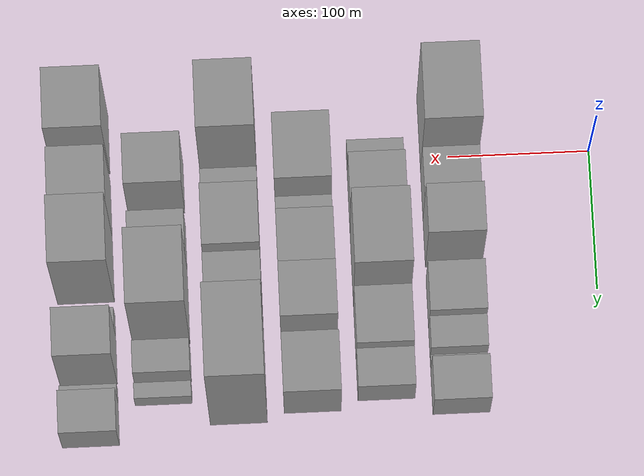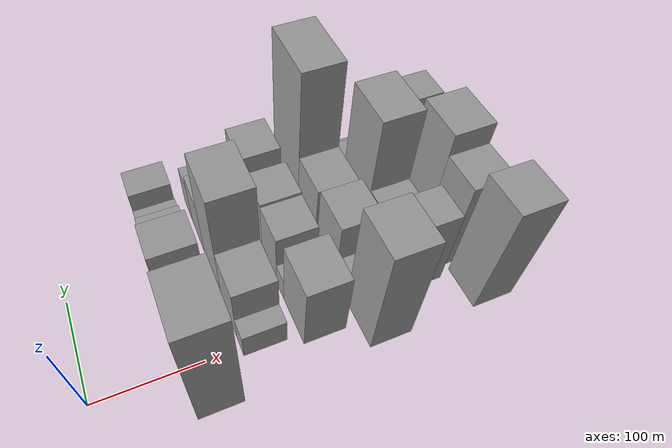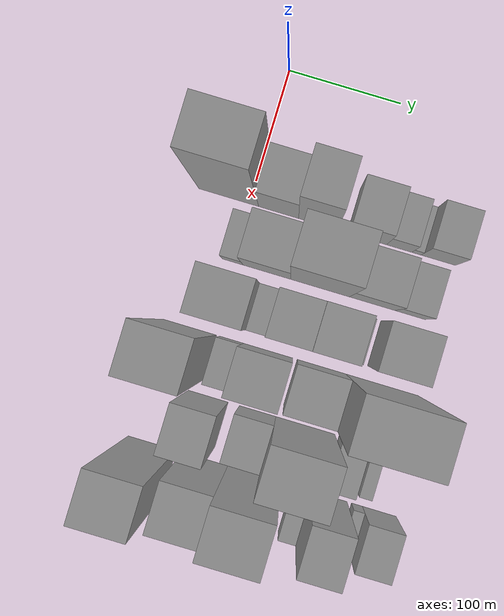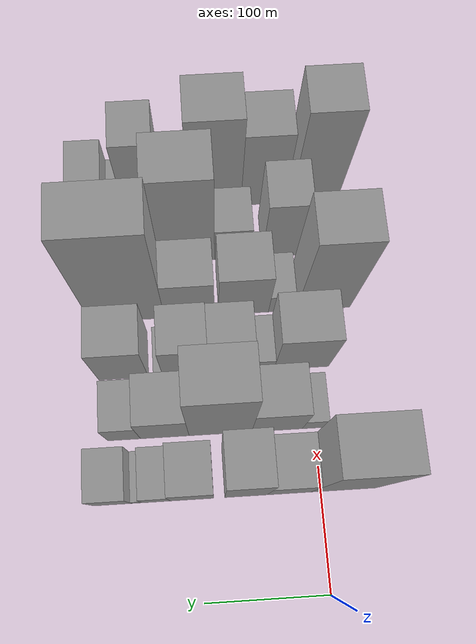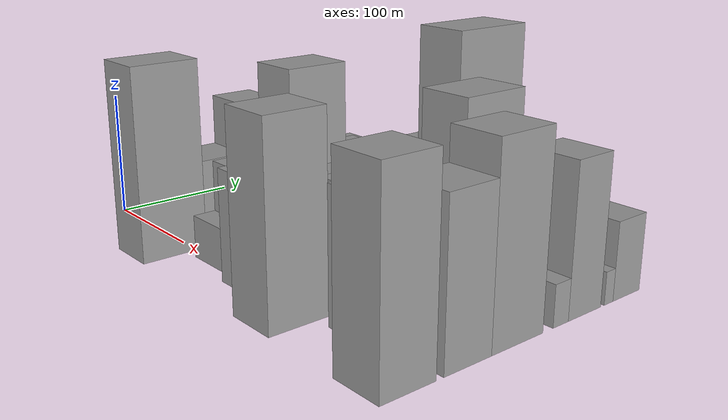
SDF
<sdf version="1.6">
 <world name="default">
  <model name="building_24">
   <static>1</static>
   <pose>100.0000 -18.0642 0 0.000000 0.000000 0.000000</pose>
   <link name="link">
    <pose>0 0 73.50 0 0 0</pose>
    <collision name="collision"><geometry><box><size>40.0000 53.4911 147.0000</size></box></geometry></collision>
    <visual name="visual">
     <cast_shadows>0</cast_shadows>
     <geometry><box><size>40.0000 53.4911 147.0000</size></box></geometry>
     <material>
      <script>
       <uri>model://grey_wall/materials/scripts</uri>
       <uri>model://grey_wall/materials/textures</uri>
       <name>vrc/grey_wall</name>
      </script>
     </material>
    </visual>
   </link>
  </model>
  <model name="building_25">
   <static>1</static>
   <pose>100.0000 26.5422 0 0.000000 0.000000 0.000000</pose>
   <link name="link">
    <pose>0 0 34.50 0 0 0</pose>
    <collision name="collision"><geometry><box><size>40.0000 35.7216 69.0000</size></box></geometry></collision>
    <visual name="visual">
     <cast_shadows>0</cast_shadows>
     <geometry><box><size>40.0000 35.7216 69.0000</size></box></geometry>
     <material>
      <script>
       <uri>model://grey_wall/materials/scripts</uri>
       <uri>model://grey_wall/materials/textures</uri>
       <name>vrc/grey_wall</name>
      </script>
     </material>
    </visual>
   </link>
  </model>
  <model name="building_26">
   <static>1</static>
   <pose>100.0000 61.6217 0 0.000000 0.000000 0.000000</pose>
   <link name="link">
    <pose>0 0 54.00 0 0 0</pose>
    <collision name="collision"><geometry><box><size>40.0000 34.4375 108.0000</size></box></geometry></collision>
    <visual name="visual">
     <cast_shadows>0</cast_shadows>
     <geometry><box><size>40.0000 34.4375 108.0000</size></box></geometry>
     <material>
      <script>
       <uri>model://grey_wall/materials/scripts</uri>
       <uri>model://grey_wall/materials/textures</uri>
       <name>vrc/grey_wall</name>
      </script>
     </material>
    </visual>
   </link>
  </model>
  <model name="building_27">
   <static>1</static>
   <pose>100.0000 105.4177 0 0.000000 0.000000 0.000000</pose>
   <link name="link">
    <pose>0 0 30.00 0 0 0</pose>
    <collision name="collision"><geometry><box><size>40.0000 35.1545 60.0000</size></box></geometry></collision>
    <visual name="visual">
     <cast_shadows>0</cast_shadows>
     <geometry><box><size>40.0000 35.1545 60.0000</size></box></geometry>
     <material>
      <script>
       <uri>model://grey_wall/materials/scripts</uri>
       <uri>model://grey_wall/materials/textures</uri>
       <name>vrc/grey_wall</name>
      </script>
     </material>
    </visual>
   </link>
  </model>
  <model name="building_28">
   <static>1</static>
   <pose>100.0000 134.3022 0 0.000000 0.000000 0.000000</pose>
   <link name="link">
    <pose>0 0 21.00 0 0 0</pose>
    <collision name="collision"><geometry><box><size>40.0000 22.6145 42.0000</size></box></geometry></collision>
    <visual name="visual">
     <cast_shadows>0</cast_shadows>
     <geometry><box><size>40.0000 22.6145 42.0000</size></box></geometry>
     <material>
      <script>
       <uri>model://grey_wall/materials/scripts</uri>
       <uri>model://grey_wall/materials/textures</uri>
       <name>vrc/grey_wall</name>
      </script>
     </material>
    </visual>
   </link>
  </model>
  <model name="building_29">
   <static>1</static>
   <pose>100.0000 149.7486 0 0.000000 0.000000 0.000000</pose>
   <link name="link">
    <pose>0 0 9.00 0 0 0</pose>
    <collision name="collision"><geometry><box><size>40.0000 8.2783 18.0000</size></box></geometry></collision>
    <visual name="visual">
     <cast_shadows>0</cast_shadows>
     <geometry><box><size>40.0000 8.2783 18.0000</size></box></geometry>
     <material>
      <script>
       <uri>model://grey_wall/materials/scripts</uri>
       <uri>model://grey_wall/materials/textures</uri>
       <name>vrc/grey_wall</name>
      </script>
     </material>
    </visual>
   </link>
  </model>
  <model name="building_30">
   <static>1</static>
   <pose>100.0000 169.3452 0 0.000000 0.000000 0.000000</pose>
   <link name="link">
    <pose>0 0 27.00 0 0 0</pose>
    <collision name="collision"><geometry><box><size>40.0000 30.9149 54.0000</size></box></geometry></collision>
    <visual name="visual">
     <cast_shadows>0</cast_shadows>
     <geometry><box><size>40.0000 30.9149 54.0000</size></box></geometry>
     <material>
      <script>
       <uri>model://grey_wall/materials/scripts</uri>
       <uri>model://grey_wall/materials/textures</uri>
       <name>vrc/grey_wall</name>
      </script>
     </material>
    </visual>
   </link>
  </model>
  <model name="building_73">
   <static>1</static>
   <pose>152.0000 1.3417 0 0.000000 0.000000 0.000000</pose>
   <link name="link">
    <pose>0 0 16.50 0 0 0</pose>
    <collision name="collision"><geometry><box><size>40.0000 18.4287 33.0000</size></box></geometry></collision>
    <visual name="visual">
     <cast_shadows>0</cast_shadows>
     <geometry><box><size>40.0000 18.4287 33.0000</size></box></geometry>
     <material>
      <script>
       <uri>model://grey_wall/materials/scripts</uri>
       <uri>model://grey_wall/materials/textures</uri>
       <name>vrc/grey_wall</name>
      </script>
     </material>
    </visual>
   </link>
  </model>
  <model name="building_74">
   <static>1</static>
   <pose>152.0000 31.7749 0 0.000000 0.000000 0.000000</pose>
   <link name="link">
    <pose>0 0 36.00 0 0 0</pose>
    <collision name="collision"><geometry><box><size>40.0000 42.4376 72.0000</size></box></geometry></collision>
    <visual name="visual">
     <cast_shadows>0</cast_shadows>
     <geometry><box><size>40.0000 42.4376 72.0000</size></box></geometry>
     <material>
      <script>
       <uri>model://grey_wall/materials/scripts</uri>
       <uri>model://grey_wall/materials/textures</uri>
       <name>vrc/grey_wall</name>
      </script>
     </material>
    </visual>
   </link>
  </model>
  <model name="building_75">
   <static>1</static>
   <pose>152.0000 79.0639 0 0.000000 0.000000 0.000000</pose>
   <link name="link">
    <pose>0 0 70.50 0 0 0</pose>
    <collision name="collision"><geometry><box><size>40.0000 52.1404 141.0000</size></box></geometry></collision>
    <visual name="visual">
     <cast_shadows>0</cast_shadows>
     <geometry><box><size>40.0000 52.1404 141.0000</size></box></geometry>
     <material>
      <script>
       <uri>model://grey_wall/materials/scripts</uri>
       <uri>model://grey_wall/materials/textures</uri>
       <name>vrc/grey_wall</name>
      </script>
     </material>
    </visual>
   </link>
  </model>
  <model name="building_76">
   <static>1</static>
   <pose>152.0000 125.3263 0 0.000000 0.000000 0.000000</pose>
   <link name="link">
    <pose>0 0 34.50 0 0 0</pose>
    <collision name="collision"><geometry><box><size>40.0000 40.3844 69.0000</size></box></geometry></collision>
    <visual name="visual">
     <cast_shadows>0</cast_shadows>
     <geometry><box><size>40.0000 40.3844 69.0000</size></box></geometry>
     <material>
      <script>
       <uri>model://grey_wall/materials/scripts</uri>
       <uri>model://grey_wall/materials/textures</uri>
       <name>vrc/grey_wall</name>
      </script>
     </material>
    </visual>
   </link>
  </model>
  <model name="building_77">
   <static>1</static>
   <pose>152.0000 159.1133 0 0.000000 0.000000 0.000000</pose>
   <link name="link">
    <pose>0 0 25.50 0 0 0</pose>
    <collision name="collision"><geometry><box><size>40.0000 27.1896 51.0000</size></box></geometry></collision>
    <visual name="visual">
     <cast_shadows>0</cast_shadows>
     <geometry><box><size>40.0000 27.1896 51.0000</size></box></geometry>
     <material>
      <script>
       <uri>model://grey_wall/materials/scripts</uri>
       <uri>model://grey_wall/materials/textures</uri>
       <name>vrc/grey_wall</name>
      </script>
     </material>
    </visual>
   </link>
  </model>
  <model name="building_120">
   <static>1</static>
   <pose>204.0000 6.5252 0 0.000000 0.000000 0.000000</pose>
   <link name="link">
    <pose>0 0 42.00 0 0 0</pose>
    <collision name="collision"><geometry><box><size>40.0000 47.1550 84.0000</size></box></geometry></collision>
    <visual name="visual">
     <cast_shadows>0</cast_shadows>
     <geometry><box><size>40.0000 47.1550 84.0000</size></box></geometry>
     <material>
      <script>
       <uri>model://grey_wall/materials/scripts</uri>
       <uri>model://grey_wall/materials/textures</uri>
       <name>vrc/grey_wall</name>
      </script>
     </material>
    </visual>
   </link>
  </model>
  <model name="building_121">
   <static>1</static>
   <pose>204.0000 39.0673 0 0.000000 0.000000 0.000000</pose>
   <link name="link">
    <pose>0 0 15.00 0 0 0</pose>
    <collision name="collision"><geometry><box><size>40.0000 17.9292 30.0000</size></box></geometry></collision>
    <visual name="visual">
     <cast_shadows>0</cast_shadows>
     <geometry><box><size>40.0000 17.9292 30.0000</size></box></geometry>
     <material>
      <script>
       <uri>model://grey_wall/materials/scripts</uri>
       <uri>model://grey_wall/materials/textures</uri>
       <name>vrc/grey_wall</name>
      </script>
     </material>
    </visual>
   </link>
  </model>
  <model name="building_122">
   <static>1</static>
   <pose>204.0000 66.9914 0 0.000000 0.000000 0.000000</pose>
   <link name="link">
    <pose>0 0 34.50 0 0 0</pose>
    <collision name="collision"><geometry><box><size>40.0000 37.9190 69.0000</size></box></geometry></collision>
    <visual name="visual">
     <cast_shadows>0</cast_shadows>
     <geometry><box><size>40.0000 37.9190 69.0000</size></box></geometry>
     <material>
      <script>
       <uri>model://grey_wall/materials/scripts</uri>
       <uri>model://grey_wall/materials/textures</uri>
       <name>vrc/grey_wall</name>
      </script>
     </material>
    </visual>
   </link>
  </model>
  <model name="building_123">
   <static>1</static>
   <pose>204.0000 105.3853 0 0.000000 0.000000 0.000000</pose>
   <link name="link">
    <pose>0 0 36.00 0 0 0</pose>
    <collision name="collision"><geometry><box><size>40.0000 38.8689 72.0000</size></box></geometry></collision>
    <visual name="visual">
     <cast_shadows>0</cast_shadows>
     <geometry><box><size>40.0000 38.8689 72.0000</size></box></geometry>
     <material>
      <script>
       <uri>model://grey_wall/materials/scripts</uri>
       <uri>model://grey_wall/materials/textures</uri>
       <name>vrc/grey_wall</name>
      </script>
     </material>
    </visual>
   </link>
  </model>
  <model name="building_124">
   <static>1</static>
   <pose>204.0000 128.4261 0 0.000000 0.000000 0.000000</pose>
   <link name="link">
    <pose>0 0 7.50 0 0 0</pose>
    <collision name="collision"><geometry><box><size>40.0000 7.2129 15.0000</size></box></geometry></collision>
    <visual name="visual">
     <cast_shadows>0</cast_shadows>
     <geometry><box><size>40.0000 7.2129 15.0000</size></box></geometry>
     <material>
      <script>
       <uri>model://grey_wall/materials/scripts</uri>
       <uri>model://grey_wall/materials/textures</uri>
       <name>vrc/grey_wall</name>
      </script>
     </material>
    </visual>
   </link>
  </model>
  <model name="building_125">
   <static>1</static>
   <pose>204.0000 158.1881 0 0.000000 0.000000 0.000000</pose>
   <link name="link">
    <pose>0 0 39.00 0 0 0</pose>
    <collision name="collision"><geometry><box><size>40.0000 42.3111 78.0000</size></box></geometry></collision>
    <visual name="visual">
     <cast_shadows>0</cast_shadows>
     <geometry><box><size>40.0000 42.3111 78.0000</size></box></geometry>
     <material>
      <script>
       <uri>model://grey_wall/materials/scripts</uri>
       <uri>model://grey_wall/materials/textures</uri>
       <name>vrc/grey_wall</name>
      </script>
     </material>
    </visual>
   </link>
  </model>
  <model name="building_168">
   <static>1</static>
   <pose>256.0000 -17.6730 0 0.000000 0.000000 0.000000</pose>
   <link name="link">
    <pose>0 0 70.50 0 0 0</pose>
    <collision name="collision"><geometry><box><size>40.0000 47.3767 141.0000</size></box></geometry></collision>
    <visual name="visual">
     <cast_shadows>0</cast_shadows>
     <geometry><box><size>40.0000 47.3767 141.0000</size></box></geometry>
     <material>
      <script>
       <uri>model://grey_wall/materials/scripts</uri>
       <uri>model://grey_wall/materials/textures</uri>
       <name>vrc/grey_wall</name>
      </script>
     </material>
    </visual>
   </link>
  </model>
  <model name="building_169">
   <static>1</static>
   <pose>256.0000 19.7069 0 0.000000 0.000000 0.000000</pose>
   <link name="link">
    <pose>0 0 18.00 0 0 0</pose>
    <collision name="collision"><geometry><box><size>40.0000 21.3831 36.0000</size></box></geometry></collision>
    <visual name="visual">
     <cast_shadows>0</cast_shadows>
     <geometry><box><size>40.0000 21.3831 36.0000</size></box></geometry>
     <material>
      <script>
       <uri>model://grey_wall/materials/scripts</uri>
       <uri>model://grey_wall/materials/textures</uri>
       <name>vrc/grey_wall</name>
      </script>
     </material>
    </visual>
   </link>
  </model>
  <model name="building_170">
   <static>1</static>
   <pose>256.0000 52.1544 0 0.000000 0.000000 0.000000</pose>
   <link name="link">
    <pose>0 0 40.50 0 0 0</pose>
    <collision name="collision"><geometry><box><size>40.0000 43.5119 81.0000</size></box></geometry></collision>
    <visual name="visual">
     <cast_shadows>0</cast_shadows>
     <geometry><box><size>40.0000 43.5119 81.0000</size></box></geometry>
     <material>
      <script>
       <uri>model://grey_wall/materials/scripts</uri>
       <uri>model://grey_wall/materials/textures</uri>
       <name>vrc/grey_wall</name>
      </script>
     </material>
    </visual>
   </link>
  </model>
  <model name="building_171">
   <static>1</static>
   <pose>256.0000 99.5088 0 0.000000 0.000000 0.000000</pose>
   <link name="link">
    <pose>0 0 37.50 0 0 0</pose>
    <collision name="collision"><geometry><box><size>40.0000 43.1968 75.0000</size></box></geometry></collision>
    <visual name="visual">
     <cast_shadows>0</cast_shadows>
     <geometry><box><size>40.0000 43.1968 75.0000</size></box></geometry>
     <material>
      <script>
       <uri>model://grey_wall/materials/scripts</uri>
       <uri>model://grey_wall/materials/textures</uri>
       <name>vrc/grey_wall</name>
      </script>
     </material>
    </visual>
   </link>
  </model>
  <model name="building_172">
   <static>1</static>
   <pose>256.0000 153.2474 0 0.000000 0.000000 0.000000</pose>
   <link name="link">
    <pose>0 0 87.00 0 0 0</pose>
    <collision name="collision"><geometry><box><size>40.0000 64.2805 174.0000</size></box></geometry></collision>
    <visual name="visual">
     <cast_shadows>0</cast_shadows>
     <geometry><box><size>40.0000 64.2805 174.0000</size></box></geometry>
     <material>
      <script>
       <uri>model://grey_wall/materials/scripts</uri>
       <uri>model://grey_wall/materials/textures</uri>
       <name>vrc/grey_wall</name>
      </script>
     </material>
    </visual>
   </link>
  </model>
  <model name="building_213">
   <static>1</static>
   <pose>308.0000 14.2326 0 0.000000 0.000000 0.000000</pose>
   <link name="link">
    <pose>0 0 48.00 0 0 0</pose>
    <collision name="collision"><geometry><box><size>40.0000 35.5693 96.0000</size></box></geometry></collision>
    <visual name="visual">
     <cast_shadows>0</cast_shadows>
     <geometry><box><size>40.0000 35.5693 96.0000</size></box></geometry>
     <material>
      <script>
       <uri>model://grey_wall/materials/scripts</uri>
       <uri>model://grey_wall/materials/textures</uri>
       <name>vrc/grey_wall</name>
      </script>
     </material>
    </visual>
   </link>
  </model>
  <model name="building_214">
   <static>1</static>
   <pose>308.0000 58.1979 0 0.000000 0.000000 0.000000</pose>
   <link name="link">
    <pose>0 0 28.50 0 0 0</pose>
    <collision name="collision"><geometry><box><size>40.0000 32.3612 57.0000</size></box></geometry></collision>
    <visual name="visual">
     <cast_shadows>0</cast_shadows>
     <geometry><box><size>40.0000 32.3612 57.0000</size></box></geometry>
     <material>
      <script>
       <uri>model://grey_wall/materials/scripts</uri>
       <uri>model://grey_wall/materials/textures</uri>
       <name>vrc/grey_wall</name>
      </script>
     </material>
    </visual>
   </link>
  </model>
  <model name="building_215">
   <static>1</static>
   <pose>308.0000 100.6138 0 0.000000 0.000000 0.000000</pose>
   <link name="link">
    <pose>0 0 72.00 0 0 0</pose>
    <collision name="collision"><geometry><box><size>40.0000 52.4707 144.0000</size></box></geometry></collision>
    <visual name="visual">
     <cast_shadows>0</cast_shadows>
     <geometry><box><size>40.0000 52.4707 144.0000</size></box></geometry>
     <material>
      <script>
       <uri>model://grey_wall/materials/scripts</uri>
       <uri>model://grey_wall/materials/textures</uri>
       <name>vrc/grey_wall</name>
      </script>
     </material>
    </visual>
   </link>
  </model>
  <model name="building_216">
   <static>1</static>
   <pose>308.0000 142.4859 0 0.000000 0.000000 0.000000</pose>
   <link name="link">
    <pose>0 0 21.00 0 0 0</pose>
    <collision name="collision"><geometry><box><size>40.0000 23.2734 42.0000</size></box></geometry></collision>
    <visual name="visual">
     <cast_shadows>0</cast_shadows>
     <geometry><box><size>40.0000 23.2734 42.0000</size></box></geometry>
     <material>
      <script>
       <uri>model://grey_wall/materials/scripts</uri>
       <uri>model://grey_wall/materials/textures</uri>
       <name>vrc/grey_wall</name>
      </script>
     </material>
    </visual>
   </link>
  </model>
  <model name="building_217">
   <static>1</static>
   <pose>308.0000 163.7034 0 0.000000 0.000000 0.000000</pose>
   <link name="link">
    <pose>0 0 13.50 0 0 0</pose>
    <collision name="collision"><geometry><box><size>40.0000 11.1617 27.0000</size></box></geometry></collision>
    <visual name="visual">
     <cast_shadows>0</cast_shadows>
     <geometry><box><size>40.0000 11.1617 27.0000</size></box></geometry>
     <material>
      <script>
       <uri>model://grey_wall/materials/scripts</uri>
       <uri>model://grey_wall/materials/textures</uri>
       <name>vrc/grey_wall</name>
      </script>
     </material>
    </visual>
   </link>
  </model>
  <model name="building_259">
   <static>1</static>
   <pose>360.0000 -20.0905 0 0.000000 0.000000 0.000000</pose>
   <link name="link">
    <pose>0 0 69.00 0 0 0</pose>
    <collision name="collision"><geometry><box><size>40.0000 42.8742 138.0000</size></box></geometry></collision>
    <visual name="visual">
     <cast_shadows>0</cast_shadows>
     <geometry><box><size>40.0000 42.8742 138.0000</size></box></geometry>
     <material>
      <script>
       <uri>model://grey_wall/materials/scripts</uri>
       <uri>model://grey_wall/materials/textures</uri>
       <name>vrc/grey_wall</name>
      </script>
     </material>
    </visual>
   </link>
  </model>
  <model name="building_260">
   <static>1</static>
   <pose>360.0000 27.2847 0 0.000000 0.000000 0.000000</pose>
   <link name="link">
    <pose>0 0 55.50 0 0 0</pose>
    <collision name="collision"><geometry><box><size>40.0000 39.8762 111.0000</size></box></geometry></collision>
    <visual name="visual">
     <cast_shadows>0</cast_shadows>
     <geometry><box><size>40.0000 39.8762 111.0000</size></box></geometry>
     <material>
      <script>
       <uri>model://grey_wall/materials/scripts</uri>
       <uri>model://grey_wall/materials/textures</uri>
       <name>vrc/grey_wall</name>
      </script>
     </material>
    </visual>
   </link>
  </model>
  <model name="building_261">
   <static>1</static>
   <pose>360.0000 70.7542 0 0.000000 0.000000 0.000000</pose>
   <link name="link">
    <pose>0 0 67.50 0 0 0</pose>
    <collision name="collision"><geometry><box><size>40.0000 47.0629 135.0000</size></box></geometry></collision>
    <visual name="visual">
     <cast_shadows>0</cast_shadows>
     <geometry><box><size>40.0000 47.0629 135.0000</size></box></geometry>
     <material>
      <script>
       <uri>model://grey_wall/materials/scripts</uri>
       <uri>model://grey_wall/materials/textures</uri>
       <name>vrc/grey_wall</name>
      </script>
     </material>
    </visual>
   </link>
  </model>
  <model name="building_262">
   <static>1</static>
   <pose>360.0000 111.8916 0 0.000000 0.000000 0.000000</pose>
   <link name="link">
    <pose>0 0 15.00 0 0 0</pose>
    <collision name="collision"><geometry><box><size>40.0000 15.2119 30.0000</size></box></geometry></collision>
    <visual name="visual">
     <cast_shadows>0</cast_shadows>
     <geometry><box><size>40.0000 15.2119 30.0000</size></box></geometry>
     <material>
      <script>
       <uri>model://grey_wall/materials/scripts</uri>
       <uri>model://grey_wall/materials/textures</uri>
       <name>vrc/grey_wall</name>
      </script>
     </material>
    </visual>
   </link>
  </model>
  <model name="building_263">
   <static>1</static>
   <pose>360.0000 136.4342 0 0.000000 0.000000 0.000000</pose>
   <link name="link">
    <pose>0 0 54.00 0 0 0</pose>
    <collision name="collision"><geometry><box><size>40.0000 33.8733 108.0000</size></box></geometry></collision>
    <visual name="visual">
     <cast_shadows>0</cast_shadows>
     <geometry><box><size>40.0000 33.8733 108.0000</size></box></geometry>
     <material>
      <script>
       <uri>model://grey_wall/materials/scripts</uri>
       <uri>model://grey_wall/materials/textures</uri>
       <name>vrc/grey_wall</name>
      </script>
     </material>
    </visual>
   </link>
  </model>
  <model name="building_264">
   <static>1</static>
   <pose>360.0000 162.2090 0 0.000000 0.000000 0.000000</pose>
   <link name="link">
    <pose>0 0 12.00 0 0 0</pose>
    <collision name="collision"><geometry><box><size>40.0000 9.6762 24.0000</size></box></geometry></collision>
    <visual name="visual">
     <cast_shadows>0</cast_shadows>
     <geometry><box><size>40.0000 9.6762 24.0000</size></box></geometry>
     <material>
      <script>
       <uri>model://grey_wall/materials/scripts</uri>
       <uri>model://grey_wall/materials/textures</uri>
       <name>vrc/grey_wall</name>
      </script>
     </material>
    </visual>
   </link>
  </model>
  <model name="building_265">
   <static>1</static>
   <pose>360.0000 182.0399 0 0.000000 0.000000 0.000000</pose>
   <link name="link">
    <pose>0 0 28.50 0 0 0</pose>
    <collision name="collision"><geometry><box><size>40.0000 29.9857 57.0000</size></box></geometry></collision>
    <visual name="visual">
     <cast_shadows>0</cast_shadows>
     <geometry><box><size>40.0000 29.9857 57.0000</size></box></geometry>
     <material>
      <script>
       <uri>model://grey_wall/materials/scripts</uri>
       <uri>model://grey_wall/materials/textures</uri>
       <name>vrc/grey_wall</name>
      </script>
     </material>
    </visual>
   </link>
  </model>
 </world>
</sdf>
